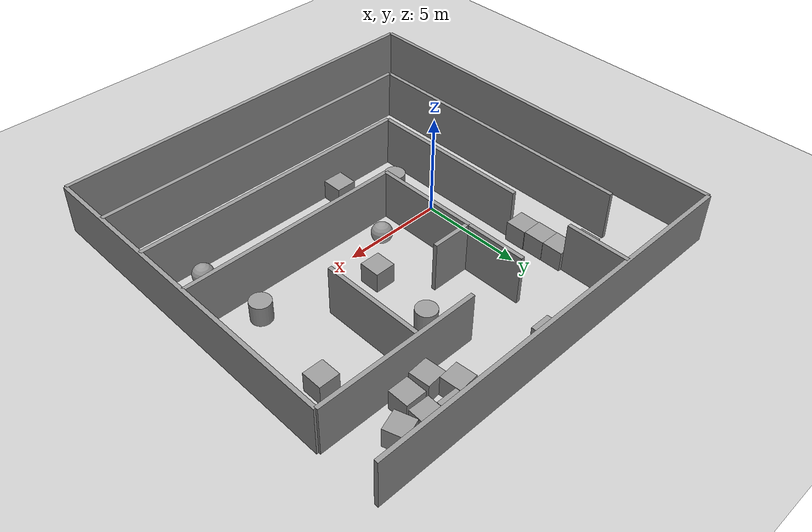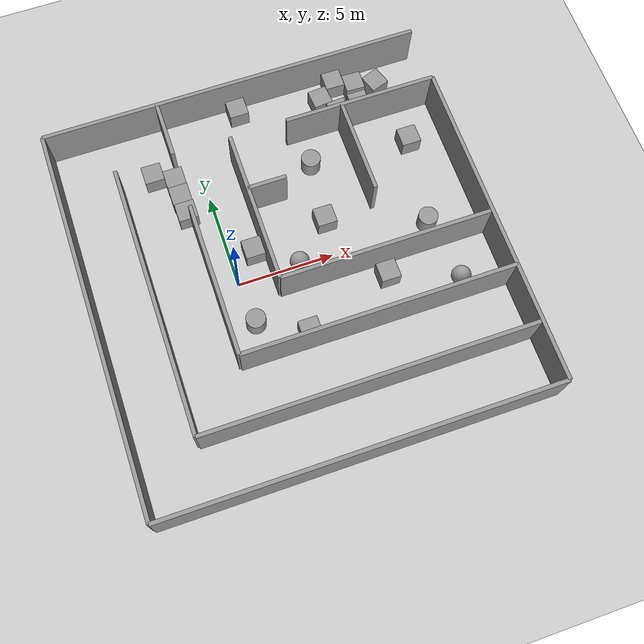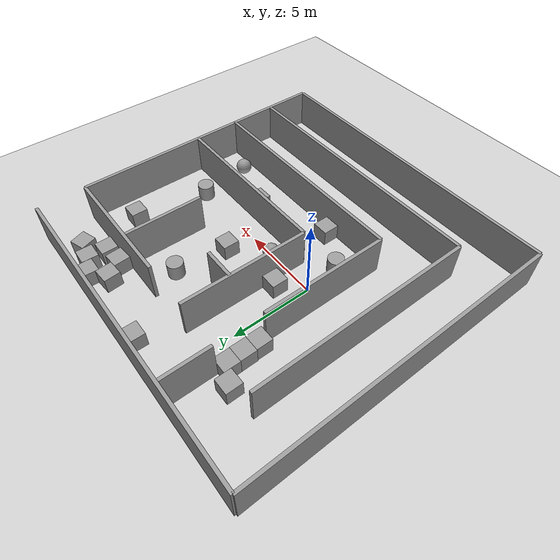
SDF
<sdf version="1.7">
 <world name="maze">
  <physics type="ode">
   <ode>
    <solver>
     <type>quick</type>
     <iters>50</iters>
     <sor>1.4</sor>
     <use_dynamic_moi_rescaling>0</use_dynamic_moi_rescaling>
    </solver>
    <constraints>
     <cfm>0</cfm>
     <erp>0.2</erp>
     <contact_max_correcting_vel>100</contact_max_correcting_vel>
     <contact_surface_layer>0</contact_surface_layer>
    </constraints>
   </ode>
   <real_time_update_rate>1000</real_time_update_rate>
   <max_step_size>0.001</max_step_size>
   <real_time_factor>1</real_time_factor>
  </physics>
  <scene><ambient>0.3 0.3 0.3 1</ambient><background>0.7 0.7 0.7 1</background><shadows>1</shadows></scene>
  <light name="sun" type="directional">
   <pose>0 0 100 0 -0 0</pose>
   <diffuse>0.9 0.9 0.9 1</diffuse>
   <specular>0.1 0.1 0.1 1</specular>
   <attenuation>
    <range>1000</range>
    <constant>0.9</constant>
    <linear>0.01</linear>
    <quadratic>0.001</quadratic>
   </attenuation>
   <direction>-0.2 0 -1</direction>
   <spot><inner_angle>0</inner_angle><outer_angle>0</outer_angle><falloff>0</falloff></spot>
  </light>
  <light name="light_bulb" type="point">
   <cast_shadows>0</cast_shadows>
   <pose>0 0 10 0 -0 0</pose>
   <diffuse>0.5 0.5 0.5 1</diffuse>
   <specular>0 0 0 1</specular>
   <attenuation>
    <range>80</range>
    <constant>0.9</constant>
    <linear>0.01</linear>
    <quadratic>0.001</quadratic>
   </attenuation>
   <direction>0 0 -1</direction>
   <spot><inner_angle>0</inner_angle><outer_angle>0</outer_angle><falloff>0</falloff></spot>
  </light>
  <model name="ground_plane">
   <static>1</static>
   <link name="link">
    <collision name="collision">
     <geometry><plane><normal>0 0 1</normal><size>100 100</size></plane></geometry>
     <surface>
      <contact><collide_bitmask>65535</collide_bitmask></contact>
      <friction><ode><mu>100</mu><mu2>50</mu2></ode></friction>
     </surface>
    </collision>
    <visual name="visual">
     <cast_shadows>0</cast_shadows>
     <geometry><plane><normal>0 0 1</normal><size>100 100</size></plane></geometry>
     <material>
      <script><uri>file://media/materials/scripts/gazebo.material</uri><name>Gazebo/Grey</name></script>
     </material>
    </visual>
   </link>
  </model>
  <model name="crazy_maze">
   <static>1</static>
   <link name="Wall_0">
    <pose>-10 -10 0 0 -0 1.5708</pose>
    <collision name="Wall_0_Collision">
     <pose>10 0 1.25 0 -0 0</pose>
     <geometry><box><size>20 0.2 2.5</size></box></geometry>
    </collision>
    <visual name="Wall_0_Visual">
     <pose>10 0 1.25 0 -0 0</pose>
     <geometry><box><size>20 0.2 2.5</size></box></geometry>
     <material>
      <script><uri>file://media/materials/scripts/gazebo.material</uri><name>Gazebo/Grey</name></script>
     </material>
    </visual>
   </link>
   <link name="Wall_1">
    <pose>-10 -10 0 0 -0 0</pose>
    <collision name="Wall_1_Collision">
     <pose>10 0 1.25 0 -0 0</pose>
     <geometry><box><size>20 0.2 2.5</size></box></geometry>
    </collision>
    <visual name="Wall_1_Visual">
     <pose>10 0 1.25 0 -0 0</pose>
     <geometry><box><size>20 0.2 2.5</size></box></geometry>
     <material>
      <script><uri>file://media/materials/scripts/gazebo.material</uri><name>Gazebo/Grey</name></script>
     </material>
    </visual>
   </link>
   <link name="Wall_2">
    <pose>10 -10 0 0 -0 1.5708</pose>
    <collision name="Wall_2_Collision">
     <pose>8.5 0 1.25 0 -0 0</pose>
     <geometry><box><size>17 0.2 2.5</size></box></geometry>
    </collision>
    <visual name="Wall_2_Visual">
     <pose>8.5 0 1.25 0 -0 0</pose>
     <geometry><box><size>17 0.2 2.5</size></box></geometry>
     <material>
      <script><uri>file://media/materials/scripts/gazebo.material</uri><name>Gazebo/Grey</name></script>
     </material>
    </visual>
   </link>
   <link name="Wall_3">
    <pose>-10 10 0 0 -0 0</pose>
    <collision name="Wall_3_Collision">
     <pose>10 0 1.25 0 -0 0</pose>
     <geometry><box><size>20 0.2 2.5</size></box></geometry>
    </collision>
    <visual name="Wall_3_Visual">
     <pose>10 0 1.25 0 -0 0</pose>
     <geometry><box><size>20 0.2 2.5</size></box></geometry>
     <material>
      <script><uri>file://media/materials/scripts/gazebo.material</uri><name>Gazebo/Grey</name></script>
     </material>
    </visual>
   </link>
   <link name="Wall_4">
    <pose>-7 -7 0 0 -0 0</pose>
    <collision name="Wall_4_Collision">
     <pose>8.5 0 1.25 0 -0 0</pose>
     <geometry><box><size>17 0.2 2.5</size></box></geometry>
    </collision>
    <visual name="Wall_4_Visual">
     <pose>8.5 0 1.25 0 -0 0</pose>
     <geometry><box><size>17 0.2 2.5</size></box></geometry>
     <material>
      <script><uri>file://media/materials/scripts/gazebo.material</uri><name>Gazebo/Grey</name></script>
     </material>
    </visual>
   </link>
   <link name="Wall_5">
    <pose>-7 -7 0 0 -0 1.5708</pose>
    <collision name="Wall_5_Collision">
     <pose>7 0 1.25 0 -0 0</pose>
     <geometry><box><size>14 0.2 2.5</size></box></geometry>
    </collision>
    <visual name="Wall_5_Visual">
     <pose>7 0 1.25 0 -0 0</pose>
     <geometry><box><size>14 0.2 2.5</size></box></geometry>
     <material>
      <script><uri>file://media/materials/scripts/gazebo.material</uri><name>Gazebo/Grey</name></script>
     </material>
    </visual>
   </link>
   <link name="Wall_6">
    <pose>-4 -4 0 0 -0 0</pose>
    <collision name="Wall_6_Collision">
     <pose>7 0 1.25 0 -0 0</pose>
     <geometry><box><size>14 0.2 2.5</size></box></geometry>
    </collision>
    <visual name="Wall_6_Visual">
     <pose>7 0 1.25 0 -0 0</pose>
     <geometry><box><size>14 0.2 2.5</size></box></geometry>
     <material>
      <script><uri>file://media/materials/scripts/gazebo.material</uri><name>Gazebo/Grey</name></script>
     </material>
    </visual>
   </link>
   <link name="Wall_7">
    <pose>-4 -4 0 0 -0 1.5708</pose>
    <collision name="Wall_7_Collision">
     <pose>4 0 1.25 0 -0 0</pose>
     <geometry><box><size>8 0.2 2.5</size></box></geometry>
    </collision>
    <visual name="Wall_7_Visual">
     <pose>4 0 1.25 0 -0 0</pose>
     <geometry><box><size>8 0.2 2.5</size></box></geometry>
     <material>
      <script><uri>file://media/materials/scripts/gazebo.material</uri><name>Gazebo/Grey</name></script>
     </material>
    </visual>
   </link>
   <link name="Wall_8">
    <pose>-1 -1 0 0 -0 0</pose>
    <collision name="Wall_8_Collision">
     <pose>5.5 0 1.25 0 -0 0</pose>
     <geometry><box><size>11 0.2 2.5</size></box></geometry>
    </collision>
    <visual name="Wall_8_Visual">
     <pose>5.5 0 1.25 0 -0 0</pose>
     <geometry><box><size>11 0.2 2.5</size></box></geometry>
     <material>
      <script><uri>file://media/materials/scripts/gazebo.material</uri><name>Gazebo/Grey</name></script>
     </material>
    </visual>
   </link>
   <link name="Wall_9">
    <pose>-1 -1 0 0 -0 1.5708</pose>
    <collision name="Wall_9_Collision">
     <pose>4 0 1.25 0 -0 0</pose>
     <geometry><box><size>8 0.2 2.5</size></box></geometry>
    </collision>
    <visual name="Wall_9_Visual">
     <pose>4 0 1.25 0 -0 0</pose>
     <geometry><box><size>8 0.2 2.5</size></box></geometry>
     <material>
      <script><uri>file://media/materials/scripts/gazebo.material</uri><name>Gazebo/Grey</name></script>
     </material>
    </visual>
   </link>
   <link name="Wall_10">
    <pose>-4 7 0 0 -0 1.5708</pose>
    <collision name="Wall_10_Collision">
     <pose>1.5 0 1.25 0 -0 0</pose>
     <geometry><box><size>3 0.2 2.5</size></box></geometry>
    </collision>
    <visual name="Wall_10_Visual">
     <pose>1.5 0 1.25 0 -0 0</pose>
     <geometry><box><size>3 0.2 2.5</size></box></geometry>
     <material>
      <script><uri>file://media/materials/scripts/gazebo.material</uri><name>Gazebo/Grey</name></script>
     </material>
    </visual>
   </link>
   <link name="Wall_11">
    <pose>-1 4 0 0 -0 0</pose>
    <collision name="Wall_11_Collision">
     <pose>1 0 1.25 0 -0 0</pose>
     <geometry><box><size>2 0.2 2.5</size></box></geometry>
    </collision>
    <visual name="Wall_11_Visual">
     <pose>1 0 1.25 0 -0 0</pose>
     <geometry><box><size>2 0.2 2.5</size></box></geometry>
     <material>
      <script><uri>file://media/materials/scripts/gazebo.material</uri><name>Gazebo/Grey</name></script>
     </material>
    </visual>
   </link>
   <link name="Wall_12">
    <pose>2 7 0 0 -0 0</pose>
    <collision name="Wall_12_Collision">
     <pose>4 0 1.25 0 -0 0</pose>
     <geometry><box><size>8 0.2 2.5</size></box></geometry>
    </collision>
    <visual name="Wall_12_Visual">
     <pose>4 0 1.25 0 -0 0</pose>
     <geometry><box><size>8 0.2 2.5</size></box></geometry>
     <material>
      <script><uri>file://media/materials/scripts/gazebo.material</uri><name>Gazebo/Grey</name></script>
     </material>
    </visual>
   </link>
   <link name="Wall_13">
    <pose>5 2 0 0 -0 1.5708</pose>
    <collision name="Wall_13_Collision">
     <pose>2.5 0 1.25 0 -0 0</pose>
     <geometry><box><size>5 0.2 2.5</size></box></geometry>
    </collision>
    <visual name="Wall_13_Visual">
     <pose>2.5 0 1.25 0 -0 0</pose>
     <geometry><box><size>5 0.2 2.5</size></box></geometry>
     <material>
      <script><uri>file://media/materials/scripts/gazebo.material</uri><name>Gazebo/Grey</name></script>
     </material>
    </visual>
   </link>
   <pose>2.81976 -0.1617 0 0 -0 0</pose>
  </model>
  <gravity>0 0 -9.81</gravity>
  <magnetic_field>6e-06 2.3e-05 -4.2e-05</magnetic_field>
  <atmosphere type="adiabatic"/>
  <spherical_coordinates>
   <surface_model>EARTH_WGS84</surface_model>
   <latitude_deg>0</latitude_deg>
   <longitude_deg>0</longitude_deg>
   <elevation>0</elevation>
   <heading_deg>0</heading_deg>
  </spherical_coordinates>
  <model name="unit_box">
   <pose>9.14095 7.6 0.5 0 -0 3e-06</pose>
   <link name="link">
    <inertial>
     <mass>1</mass>
     <inertia>
      <ixx>0.166667</ixx>
      <ixy>0</ixy>
      <ixz>0</ixz>
      <iyy>0.166667</iyy>
      <iyz>0</iyz>
      <izz>0.166667</izz>
     </inertia>
    </inertial>
    <collision name="collision"><geometry><box><size>1 1 1</size></box></geometry></collision>
    <visual name="visual">
     <geometry><box><size>1 1 1</size></box></geometry>
     <material>
      <script><name>Gazebo/Grey</name><uri>file://media/materials/scripts/gazebo.material</uri></script>
     </material>
    </visual>
   </link>
  </model>
  <model name="unit_box_0">
   <pose>10.378 8.49368 0.5 0 -0 0.328609</pose>
   <link name="link">
    <inertial>
     <mass>1</mass>
     <inertia>
      <ixx>0.166667</ixx>
      <ixy>0</ixy>
      <ixz>0</ixz>
      <iyy>0.166667</iyy>
      <iyz>0</iyz>
      <izz>0.166667</izz>
     </inertia>
    </inertial>
    <collision name="collision"><geometry><box><size>1 1 1</size></box></geometry></collision>
    <visual name="visual">
     <geometry><box><size>1 1 1</size></box></geometry>
     <material>
      <script><name>Gazebo/Grey</name><uri>file://media/materials/scripts/gazebo.material</uri></script>
     </material>
    </visual>
   </link>
  </model>
  <model name="unit_box_1">
   <pose>9.24016 8.76562 0.5 0 -0 -0.030111</pose>
   <link name="link">
    <inertial>
     <mass>1</mass>
     <inertia>
      <ixx>0.166667</ixx>
      <ixy>0</ixy>
      <ixz>0</ixz>
      <iyy>0.166667</iyy>
      <iyz>0</iyz>
      <izz>0.166667</izz>
     </inertia>
    </inertial>
    <collision name="collision"><geometry><box><size>1 1 1</size></box></geometry></collision>
    <visual name="visual">
     <geometry><box><size>1 1 1</size></box></geometry>
     <material>
      <script><name>Gazebo/Grey</name><uri>file://media/materials/scripts/gazebo.material</uri></script>
     </material>
    </visual>
   </link>
  </model>
  <model name="unit_box_2">
   <pose>8.23661 9.22897 0.5 0 -0 -0.017252</pose>
   <link name="link">
    <inertial>
     <mass>1</mass>
     <inertia>
      <ixx>0.166667</ixx>
      <ixy>0</ixy>
      <ixz>0</ixz>
      <iyy>0.166667</iyy>
      <iyz>0</iyz>
      <izz>0.166667</izz>
     </inertia>
    </inertial>
    <collision name="collision"><geometry><box><size>1 1 1</size></box></geometry></collision>
    <visual name="visual">
     <geometry><box><size>1 1 1</size></box></geometry>
     <material>
      <script><name>Gazebo/Grey</name><uri>file://media/materials/scripts/gazebo.material</uri></script>
     </material>
    </visual>
   </link>
  </model>
  <model name="unit_box_3">
   <pose>-1.37504 4.33831 0.499998 -1e-06 3e-06 -8e-06</pose>
   <link name="link">
    <inertial>
     <mass>1</mass>
     <inertia>
      <ixx>0.166667</ixx>
      <ixy>0</ixy>
      <ixz>0</ixz>
      <iyy>0.166667</iyy>
      <iyz>0</iyz>
      <izz>0.166667</izz>
     </inertia>
    </inertial>
    <collision name="collision"><geometry><box><size>1 1 1</size></box></geometry></collision>
    <visual name="visual">
     <geometry><box><size>1 1 1</size></box></geometry>
     <material>
      <script><name>Gazebo/Grey</name><uri>file://media/materials/scripts/gazebo.material</uri></script>
     </material>
    </visual>
   </link>
  </model>
  <model name="unit_box_4">
   <pose>-1.41168 5.33831 0.5 0 0 -7e-06</pose>
   <link name="link">
    <inertial>
     <mass>1</mass>
     <inertia>
      <ixx>0.166667</ixx>
      <ixy>0</ixy>
      <ixz>0</ixz>
      <iyy>0.166667</iyy>
      <iyz>0</iyz>
      <izz>0.166667</izz>
     </inertia>
    </inertial>
    <collision name="collision"><geometry><box><size>1 1 1</size></box></geometry></collision>
    <visual name="visual">
     <geometry><box><size>1 1 1</size></box></geometry>
     <material>
      <script><name>Gazebo/Grey</name><uri>file://media/materials/scripts/gazebo.material</uri></script>
     </material>
    </visual>
   </link>
  </model>
  <model name="unit_box_5">
   <pose>-1.42417 6.33831 0.499999 -0 -0 -7e-06</pose>
   <link name="link">
    <inertial>
     <mass>1</mass>
     <inertia>
      <ixx>0.166667</ixx>
      <ixy>0</ixy>
      <ixz>0</ixz>
      <iyy>0.166667</iyy>
      <iyz>0</iyz>
      <izz>0.166667</izz>
     </inertia>
    </inertial>
    <collision name="collision"><geometry><box><size>1 1 1</size></box></geometry></collision>
    <visual name="visual">
     <geometry><box><size>1 1 1</size></box></geometry>
     <material>
      <script><name>Gazebo/Grey</name><uri>file://media/materials/scripts/gazebo.material</uri></script>
     </material>
    </visual>
   </link>
  </model>
  <model name="unit_box_6">
   <pose>-2.4256 6.90456 0.5 0 -0 0.000635</pose>
   <link name="link">
    <inertial>
     <mass>1</mass>
     <inertia>
      <ixx>0.166667</ixx>
      <ixy>0</ixy>
      <ixz>0</ixz>
      <iyy>0.166667</iyy>
      <iyz>0</iyz>
      <izz>0.166667</izz>
     </inertia>
    </inertial>
    <collision name="collision"><geometry><box><size>1 1 1</size></box></geometry></collision>
    <visual name="visual">
     <geometry><box><size>1 1 1</size></box></geometry>
     <material>
      <script><name>Gazebo/Grey</name><uri>file://media/materials/scripts/gazebo.material</uri></script>
     </material>
    </visual>
   </link>
  </model>
  <model name="unit_box_7">
   <pose>7.94564 7.47397 0.5 0 -0 0.07395</pose>
   <link name="link">
    <inertial>
     <mass>1</mass>
     <inertia>
      <ixx>0.166667</ixx>
      <ixy>0</ixy>
      <ixz>0</ixz>
      <iyy>0.166667</iyy>
      <iyz>0</iyz>
      <izz>0.166667</izz>
     </inertia>
    </inertial>
    <collision name="collision"><geometry><box><size>1 1 1</size></box></geometry></collision>
    <visual name="visual">
     <geometry><box><size>1 1 1</size></box></geometry>
     <material>
      <script><name>Gazebo/Grey</name><uri>file://media/materials/scripts/gazebo.material</uri></script>
     </material>
    </visual>
   </link>
  </model>
  <model name="unit_box_8">
   <pose>7.25207 8.42481 0.5 0 -0 0.082461</pose>
   <link name="link">
    <inertial>
     <mass>1</mass>
     <inertia>
      <ixx>0.166667</ixx>
      <ixy>0</ixy>
      <ixz>0</ixz>
      <iyy>0.166667</iyy>
      <iyz>0</iyz>
      <izz>0.166667</izz>
     </inertia>
    </inertial>
    <collision name="collision"><geometry><box><size>1 1 1</size></box></geometry></collision>
    <visual name="visual">
     <geometry><box><size>1 1 1</size></box></geometry>
     <material>
      <script><name>Gazebo/Grey</name><uri>file://media/materials/scripts/gazebo.material</uri></script>
     </material>
    </visual>
   </link>
  </model>
  <model name="unit_box_9">
   <pose>2.85043 9.21542 0.5 0 -0 0</pose>
   <link name="link">
    <inertial>
     <mass>1</mass>
     <inertia>
      <ixx>0.166667</ixx>
      <ixy>0</ixy>
      <ixz>0</ixz>
      <iyy>0.166667</iyy>
      <iyz>0</iyz>
      <izz>0.166667</izz>
     </inertia>
    </inertial>
    <collision name="collision"><geometry><box><size>1 1 1</size></box></geometry></collision>
    <visual name="visual">
     <geometry><box><size>1 1 1</size></box></geometry>
     <material>
      <script><name>Gazebo/Grey</name><uri>file://media/materials/scripts/gazebo.material</uri></script>
     </material>
    </visual>
   </link>
  </model>
  <model name="unit_box_10">
   <pose>1.21975 1.34076 0.5 0 -0 4e-06</pose>
   <link name="link">
    <inertial>
     <mass>1</mass>
     <inertia>
      <ixx>0.166667</ixx>
      <ixy>0</ixy>
      <ixz>0</ixz>
      <iyy>0.166667</iyy>
      <iyz>0</iyz>
      <izz>0.166667</izz>
     </inertia>
    </inertial>
    <collision name="collision"><geometry><box><size>1 1 1</size></box></geometry></collision>
    <visual name="visual">
     <geometry><box><size>1 1 1</size></box></geometry>
     <material>
      <script><name>Gazebo/Grey</name><uri>file://media/materials/scripts/gazebo.material</uri></script>
     </material>
    </visual>
   </link>
  </model>
  <model name="unit_box_11">
   <pose>2.55387 -3.56109 0.5 0 -0 0</pose>
   <link name="link">
    <inertial>
     <mass>1</mass>
     <inertia>
      <ixx>0.166667</ixx>
      <ixy>0</ixy>
      <ixz>0</ixz>
      <iyy>0.166667</iyy>
      <iyz>0</iyz>
      <izz>0.166667</izz>
     </inertia>
    </inertial>
    <collision name="collision"><geometry><box><size>1 1 1</size></box></geometry></collision>
    <visual name="visual">
     <geometry><box><size>1 1 1</size></box></geometry>
     <material>
      <script><name>Gazebo/Grey</name><uri>file://media/materials/scripts/gazebo.material</uri></script>
     </material>
    </visual>
   </link>
  </model>
  <model name="unit_box_12">
   <pose>7.18559 -1.97033 0.5 0 -0 0</pose>
   <link name="link">
    <inertial>
     <mass>1</mass>
     <inertia>
      <ixx>0.166667</ixx>
      <ixy>0</ixy>
      <ixz>0</ixz>
      <iyy>0.166667</iyy>
      <iyz>0</iyz>
      <izz>0.166667</izz>
     </inertia>
    </inertial>
    <collision name="collision"><geometry><box><size>1 1 1</size></box></geometry></collision>
    <visual name="visual">
     <geometry><box><size>1 1 1</size></box></geometry>
     <material>
      <script><name>Gazebo/Grey</name><uri>file://media/materials/scripts/gazebo.material</uri></script>
     </material>
    </visual>
   </link>
  </model>
  <model name="unit_sphere">
   <pose>10.6344 -3.22785 0.5 0 -0 0</pose>
   <link name="link">
    <inertial>
     <mass>1</mass>
     <inertia><ixx>0.1</ixx><ixy>0</ixy><ixz>0</ixz><iyy>0.1</iyy><iyz>0</iyz><izz>0.1</izz></inertia>
    </inertial>
    <collision name="collision"><geometry><sphere><radius>0.5</radius></sphere></geometry></collision>
    <visual name="visual">
     <geometry><sphere><radius>0.5</radius></sphere></geometry>
     <material>
      <script><name>Gazebo/Grey</name><uri>file://media/materials/scripts/gazebo.material</uri></script>
     </material>
    </visual>
   </link>
  </model>
  <model name="unit_sphere_0">
   <pose>3.24844 0.064581 0.5 0 -0 0</pose>
   <link name="link">
    <inertial>
     <mass>1</mass>
     <inertia><ixx>0.1</ixx><ixy>0</ixy><ixz>0</ixz><iyy>0.1</iyy><iyz>0</iyz><izz>0.1</izz></inertia>
    </inertial>
    <collision name="collision"><geometry><sphere><radius>0.5</radius></sphere></geometry></collision>
    <visual name="visual">
     <geometry><sphere><radius>0.5</radius></sphere></geometry>
     <material>
      <script><name>Gazebo/Grey</name><uri>file://media/materials/scripts/gazebo.material</uri></script>
     </material>
    </visual>
   </link>
  </model>
  <model name="unit_box_13">
   <pose>5.19555 1.83884 0.5 0 -0 0</pose>
   <link name="link">
    <inertial>
     <mass>1</mass>
     <inertia>
      <ixx>0.166667</ixx>
      <ixy>0</ixy>
      <ixz>0</ixz>
      <iyy>0.166667</iyy>
      <iyz>0</iyz>
      <izz>0.166667</izz>
     </inertia>
    </inertial>
    <collision name="collision"><geometry><box><size>1 1 1</size></box></geometry></collision>
    <visual name="visual">
     <geometry><box><size>1 1 1</size></box></geometry>
     <material>
      <script><name>Gazebo/Grey</name><uri>file://media/materials/scripts/gazebo.material</uri></script>
     </material>
    </visual>
   </link>
  </model>
  <model name="unit_cylinder">
   <pose>10.1455 0.134257 0.499993 -3e-06 -3e-06 0</pose>
   <link name="link">
    <inertial>
     <mass>1</mass>
     <inertia><ixx>0.145833</ixx><ixy>0</ixy><ixz>0</ixz><iyy>0.145833</iyy><iyz>0</iyz><izz>0.125</izz></inertia>
    </inertial>
    <collision name="collision">
     <geometry><cylinder><radius>0.5</radius><length>1</length></cylinder></geometry>
    </collision>
    <visual name="visual">
     <geometry><cylinder><radius>0.5</radius><length>1</length></cylinder></geometry>
     <material>
      <script><name>Gazebo/Grey</name><uri>file://media/materials/scripts/gazebo.material</uri></script>
     </material>
    </visual>
   </link>
  </model>
  <model name="unit_box_14">
   <pose>10.8782 4.76812 0.5 0 -0 0</pose>
   <link name="link">
    <inertial>
     <mass>1</mass>
     <inertia>
      <ixx>0.166667</ixx>
      <ixy>0</ixy>
      <ixz>0</ixz>
      <iyy>0.166667</iyy>
      <iyz>0</iyz>
      <izz>0.166667</izz>
     </inertia>
    </inertial>
    <collision name="collision"><geometry><box><size>1 1 1</size></box></geometry></collision>
    <visual name="visual">
     <geometry><box><size>1 1 1</size></box></geometry>
     <material>
      <script><name>Gazebo/Grey</name><uri>file://media/materials/scripts/gazebo.material</uri></script>
     </material>
    </visual>
   </link>
  </model>
  <model name="unit_cylinder_0">
   <pose>5.58745 5.12884 0.499993 -3e-06 -3e-06 0</pose>
   <link name="link">
    <inertial>
     <mass>1</mass>
     <inertia><ixx>0.145833</ixx><ixy>0</ixy><ixz>0</ixz><iyy>0.145833</iyy><iyz>0</iyz><izz>0.125</izz></inertia>
    </inertial>
    <collision name="collision">
     <geometry><cylinder><radius>0.5</radius><length>1</length></cylinder></geometry>
    </collision>
    <visual name="visual">
     <geometry><cylinder><radius>0.5</radius><length>1</length></cylinder></geometry>
     <material>
      <script><name>Gazebo/Grey</name><uri>file://media/materials/scripts/gazebo.material</uri></script>
     </material>
    </visual>
   </link>
  </model>
  <model name="unit_cylinder_1">
   <pose>0.198692 -2.24669 0.499992 -3e-06 -4e-06 -0</pose>
   <link name="link">
    <inertial>
     <mass>1</mass>
     <inertia><ixx>0.145833</ixx><ixy>0</ixy><ixz>0</ixz><iyy>0.145833</iyy><iyz>0</iyz><izz>0.125</izz></inertia>
    </inertial>
    <collision name="collision">
     <geometry><cylinder><radius>0.5</radius><length>1</length></cylinder></geometry>
    </collision>
    <visual name="visual">
     <geometry><cylinder><radius>0.5</radius><length>1</length></cylinder></geometry>
     <material>
      <script><name>Gazebo/Grey</name><uri>file://media/materials/scripts/gazebo.material</uri></script>
     </material>
    </visual>
   </link>
  </model>
 </world>
</sdf>
